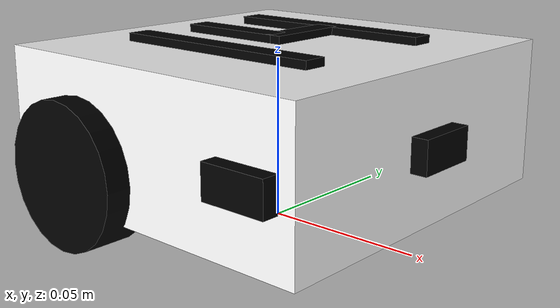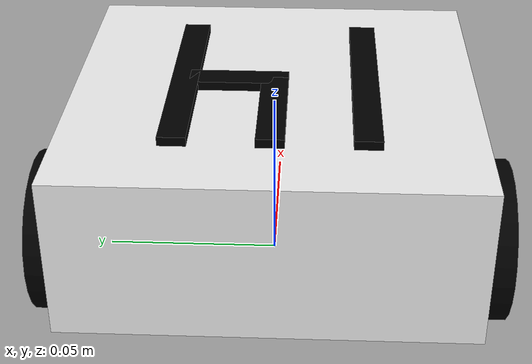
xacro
<?xml version="1.0"?>

<robot xmlns:xacro="https://www.ros.org/wiki/xacro" name="THYMIO">

    <xacro:include filename="$(find ros_basics_2020)/urdf/macros.xacro" />
    <xacro:include filename="$(find ros_basics_2020)/urdf/materials.xacro" />

    <!-- Below you will find the rough specifications of the robot's mass and size -->
    <xacro:arg name="left_wheel_mu" default="100.0"/>
    <xacro:property name="left_wheel_mu_p" value="$(arg left_wheel_mu)"/>

    <xacro:arg name="right_wheel_mu" default="100.0"/>
    <xacro:property name="right_wheel_mu_p" value="$(arg right_wheel_mu)"/>

    <!-- radius of a single Thymio's wheel -->
    <xacro:property name="wheel_r" value="0.022"/>

    <!-- length of a single Thymio's wheel (if you think of the wheel as a cylinder,
         this would be the cylinder length) -->
    <xacro:property name="wheel_l" value="0.015"/>

    <!-- The total mass of the Thymio -->
    <xacro:arg name="mass" default="0.270"/>
    <xacro:property name="mass_p" value="$(arg mass)"/>

        <!-- Thymio's mass is distributed 20% at the wheels and 80% at the main body  -->
    <xacro:property name="body_mass" value="${mass_p * 0.80}"/>
    <xacro:property name="wheel_mass" value="${mass_p * 0.10}"/>

    <!-- Design your robot here using simple shapes (i.e., boxes, cylinders, spheres) -->

    <link name="main_body">
        <inertial>
            <mass value="${body_mass}"/>
            <!-- This is the actual size of the Thymio's main body -->
            <xacro:box_inertia m="${body_mass}" x="0.11" y="0.112" z="0.045" />

            <!-- Within this scope you need to define the inertial properties of the robot -->
            <!-- Take note that here we use the macro xacro:box_inertia defined int the macros.xacro -->
            <!-- If you are confident enough you can compute the inertia values on your own,
                 but be very careful to do it correctly -->
        </inertial>

        <!-- The collision shape is used for the physics-->
        <collision name="collision_body">
            <origin xyz="0 0 ${0.045/2 + 0.01}"/>
            <geometry>
                <box size="0.11 0.112 0.045"/>
            </geometry>
            <material name="white"/>
        </collision>

        <visual name="visual_body">
            <origin xyz="0 0 ${0.045/2 + 0.01}"/>
            <geometry>
                <box size="0.11 0.112 0.045"/>
            </geometry>
            <material name="white"/>
        </visual>

        <visual name="group_number">
            <origin xyz="0 -0.025 ${0.045 + 0.01}"/>
            <geometry>
                <box size="0.07 0.0075 0.005"/>
            </geometry>
            <material name="black"/>
        </visual>

        <visual name="group_number">
            <origin xyz="0 0.025 ${0.045 + 0.01}"/>
            <geometry>
                <box size="0.07 0.0075 0.005"/>
            </geometry>
            <material name="black"/>
        </visual>

        <visual name="group_number">
            <origin xyz="-0.0175 0 ${0.045 + 0.01}"/>
            <geometry>
                <box size="0.035 0.0075 0.005"/>
            </geometry>
            <material name="black"/>
        </visual>

        <visual name="group_number">
            <origin xyz="0 0.01 ${0.045 + 0.01}"/>
            <geometry>
                <box size="0.0075 0.0275 0.005"/>
            </geometry>
            <material name="black"/>
        </visual>

        <visual name="visual_sensor_front">
            <origin xyz="${0.11/2} 0 ${0.045/2 + 0.01}"/>
            <geometry>
                <box size="0.01 0.02 0.01"/>
            </geometry>
            <material name="black"/>
        </visual>

        <visual name="visual_sensor_left">
            <origin xyz="0.04 ${0.112/2} ${0.045/2 + 0.01}"/>
            <geometry>
                <box size="0.02 0.01 0.01"/>
            </geometry>
            <material name="black"/>
        </visual>

        <visual name="visual_sensor_right">
            <origin xyz="0.04 ${-0.112/2} ${0.045/2 + 0.01}"/>
            <geometry>
                <box size="0.02 0.01 0.01"/>
            </geometry>
            <material name="black"/>
        </visual>

        <collision name="collision_sphere">
            <origin xyz="0.035 0 0.01"/>
            <geometry>
                <sphere radius="0.01"/>
            </geometry>
            <material name="white"/>
        </collision>

        <visual name="visual_sphere">
            <origin xyz="0.03 0 0.01"/>
            <geometry>
                <sphere radius="0.01"/>
            </geometry>
            <material name="white"/>
        </visual>
    </link>

    <!-- Below you will find the joints and links for the wheels -->
    <joint name="left_wheel_joint" type="continuous">
        <parent link="main_body"/>
        <child link="left_wheel"/>
        <axis rpy="0 0 0" xyz="0 1 0"/>
        <origin xyz="-0.025 0.056 ${wheel_r}"/>
    </joint>

    <link name="left_wheel">
        <inertial>
            <mass value="${wheel_mass}"/>
            <xacro:cylinder_inertia m="${wheel_mass}" r="${wheel_r}" h="${wheel_l}"/>
        </inertial>

        <collision name="collision_wheel">
            <origin xyz="0 0 0" rpy="1.5708 0 0"/>
            <geometry>
                <cylinder radius="${wheel_r}" length="${wheel_l}"/>
            </geometry>
            <material name="black"/>
        </collision>

        <visual name="visual_wheel">
            <origin xyz="0 0 0" rpy="1.5708 0 0"/>
            <geometry>
                <cylinder radius="${wheel_r}" length="${wheel_l}"/>
            </geometry>
            <material name="black"/>
        </visual>
    </link>

    <joint name="right_wheel_joint" type="continuous">
        <parent link="main_body"/>
        <child link="right_wheel"/>
        <axis rpy="0 0 0" xyz="0 1 0"/>
        <origin xyz="-0.025 -0.056 ${wheel_r}"/>
    </joint>

    <link name="right_wheel">
        <inertial>
            <mass value="${wheel_mass}"/>
            <xacro:cylinder_inertia m="${wheel_mass}" r="${wheel_r}" h="${wheel_l}"/>
        </inertial>

        <collision name="collision_wheel">
            <origin xyz="0 0 0" rpy="1.5708 0 0"/>
            <geometry>
                <cylinder radius="${wheel_r}" length="${wheel_l}"/>
            </geometry>
            <material name="black"/>
        </collision>

        <visual name="visual_wheel">
            <origin xyz="0 0 0" rpy="1.5708 0 0"/>
            <geometry>
                <cylinder radius="${wheel_r}" length="${wheel_l}"/>
            </geometry>
            <material name="black"/>
        </visual>
    </link>

    <xacro:csensor plink="main_body" side="front" mass="0.001" originrpy="0 0 -1.5708" originxyz="-0.003 0 0" originjoint="${0.11/2} 0 ${0.045/2 + 0.01}" />

    <xacro:csensor plink="main_body" side="left" mass="0.001" originrpy="0 0 -3.1416" originxyz="0 -0.003 0" originjoint="0.04 ${0.112/2} ${0.045/2 + 0.01}" />

    <xacro:csensor plink="main_body" side="right" mass="0.001" originrpy="0 0 3.1416" originxyz="0 0.003 0" originjoint="0.04 ${-0.112/2} ${0.045/2 + 0.01}" />

    <!-- Below you will find samples of gazebo plugins you may want to use. -->
    <!-- These should be adapted to your robot's design -->
    <gazebo reference="sensor_front">
        <sensor type="ray" name="laser_front">
            <pose>0 0 0 0 0 0</pose>
            <ray>
                <scan>
                    <horizontal>
                        <samples>13</samples>
                        <resolution>1</resolution>
                        <min_angle>-1.5</min_angle>
                        <max_angle>1.5</max_angle>
                    </horizontal>
                </scan>
                <range>
                    <!-- You can edit adapt these to your robot's size -->
                    <min>0.001</min>
                    <max>0.2</max>
                    <resolution>0.0001</resolution>
                </range>
            </ray>
            <plugin name="laser" filename="libgazebo_ros_laser.so" >
                <topicName>laser_front/scan</topicName>
                <frameName>sensor_front</frameName>
            </plugin>
            <always_on>1</always_on>
            <update_rate>10</update_rate>
            <visualize>true</visualize>
        </sensor>
    </gazebo>

    <gazebo reference="sensor_left">
        <sensor type="ray" name="laser_left">
            <pose>0 0 0 0 0 0</pose>
            <ray>
                <scan>
                    <horizontal>
                        <samples>13</samples>
                        <resolution>1</resolution>
                        <min_angle>0.0708</min_angle>
                        <max_angle>3.0708</max_angle>
                    </horizontal>
                </scan>
                <range>
                    <!-- You can edit adapt these to your robot's size -->
                    <min>0.001</min>
                    <max>0.2</max>
                    <resolution>0.0001</resolution>
                </range>
            </ray>
            <plugin name="laser" filename="libgazebo_ros_laser.so" >
                <topicName>laser_left/scan</topicName>
                <frameName>sensor_left</frameName>
            </plugin>
            <always_on>1</always_on>
            <update_rate>10</update_rate>
            <visualize>true</visualize>
        </sensor>
    </gazebo>

    <gazebo reference="sensor_right">
        <sensor type="ray" name="laser_right">
            <pose>0 0 0 0 0 0</pose>
            <ray>
                <scan>
                    <horizontal>
                        <samples>13</samples>
                        <resolution>1</resolution>
                        <min_angle>-3.0708</min_angle>
                        <max_angle>-0.0708</max_angle>
                    </horizontal>
                </scan>
                <range>
                    <!-- You can edit adapt these to your robot's size -->
                    <min>0.001</min>
                    <max>0.2</max>
                    <resolution>0.0001</resolution>
                </range>
            </ray>
            <plugin name="laser" filename="libgazebo_ros_laser.so" >
                <topicName>laser_right/scan</topicName>
                <frameName>sensor_right</frameName>
            </plugin>
            <always_on>1</always_on>
            <update_rate>10</update_rate>
            <visualize>true</visualize>
        </sensor>
    </gazebo>

    <gazebo>
        <plugin name="differential_drive_controller" filename="libgazebo_ros_diff_drive.so">
            <alwaysOn>true</alwaysOn>
            <updateRate>20</updateRate>
            <leftJoint>left_wheel_joint</leftJoint>
            <rightJoint>right_wheel_joint</rightJoint>
            <wheelSeparation>0.11</wheelSeparation>
            <wheelDiameter>0.044</wheelDiameter>

            <commandTopic>cmd_vel</commandTopic>
            <odometryTopic>odom</odometryTopic>
            <odometryFrame>odom</odometryFrame>

            <robotBaseFrame>main_body</robotBaseFrame>
        </plugin>
    </gazebo>

</robot>

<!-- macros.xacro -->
<robot name="YOUR_ROBOT_NAME" xmlns:xacro="https://www.ros.org/wiki/xacro" >

  <xacro:macro name="cylinder_inertia" params="m r h">
    <inertia  ixx="${m*(3*r*r+h*h)/12}" ixy = "0" ixz = "0"
      iyy="${m*(3*r*r+h*h)/12}" iyz = "0"
      izz="${m*r*r/2}"
    />
  </xacro:macro>

  <xacro:macro name="box_inertia" params="m x y z">
    <inertia  ixx="${m*(y*y+z*z)/12}" ixy = "0" ixz = "0"
      iyy="${m*(x*x+z*z)/12}" iyz = "0"
      izz="${m*(x*x+z*z)/12}"
    />
  </xacro:macro>

  <xacro:macro name="sphere_inertia" params="m r">
    <inertia  ixx="${2*m*r*r/5}" ixy = "0" ixz = "0"
      iyy="${2*m*r*r/5}" iyz = "0"
      izz="${2*m*r*r/5}"
    />
  </xacro:macro>

 <xacro:property name="sensor_width" value="0.007" />
 <xacro:property name="sensor_length" value="0.0025" />
 <xacro:property name="sensor_height" value="0.004" />

 <xacro:macro name="csensor" params="plink side mass originrpy originxyz originjoint">
    <link name="sensor_${side}">
      <visual>
        <geometry>
          <box size = "${sensor_width} ${sensor_length} ${sensor_height}"/>
        </geometry>
        <material name="black"/>
        <origin rpy="${originrpy}" xyz="${originxyz}"/>
      </visual>

      <collision>
        <geometry>
          <box size = "${sensor_width} ${sensor_length} ${sensor_height}"/>
        </geometry>
        <origin rpy="${originrpy}" xyz="${originxyz}"/>
      </collision>

      <inertial>
        <mass value="${mass}"/>
        <origin rpy="${originrpy}" xyz="${originxyz}"/>
        <xacro:box_inertia m="${mass}" x="${sensor_length}" y="${sensor_width}" z="${sensor_height}" />
      </inertial>
    </link>

    <joint name="${plink}_sensor_${side}" type="fixed">
      <parent link="${plink}"/>
      <child link="sensor_${side}"/>
      <origin xyz="${originjoint}"/>
    </joint>
  </xacro:macro>

</robot>

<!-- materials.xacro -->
<robot name="YOUR_ROBOT_NAME">

    <material name="white">
        <color rgba="1 1 1 1"/>
    </material>

    <material name="black">
        <color rgba="0 0 0 1"/>
    </material>

    <material name="blue">
        <color rgba="0 0 0.8 1"/>
    </material>

    <material name="yellow">
        <color rgba="1 1 0 1"/>
    </material>

    <material name="green">
        <color rgba="0 1 0 1"/>
    </material>

</robot>
